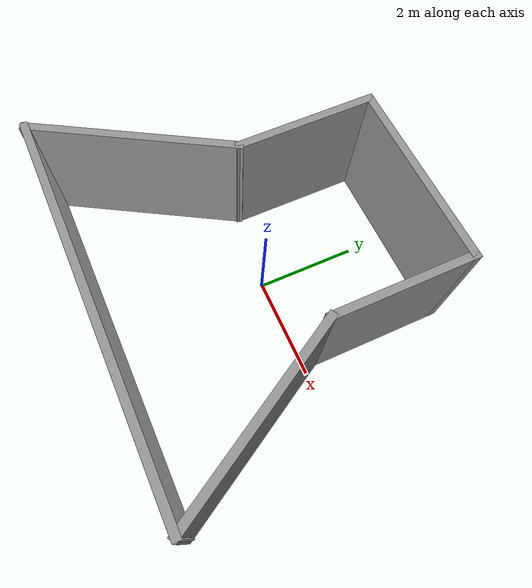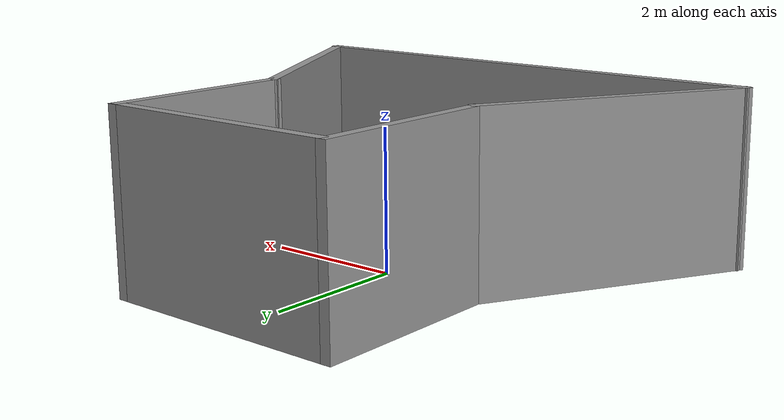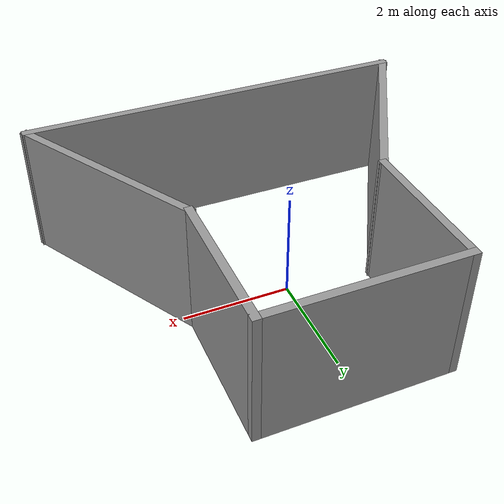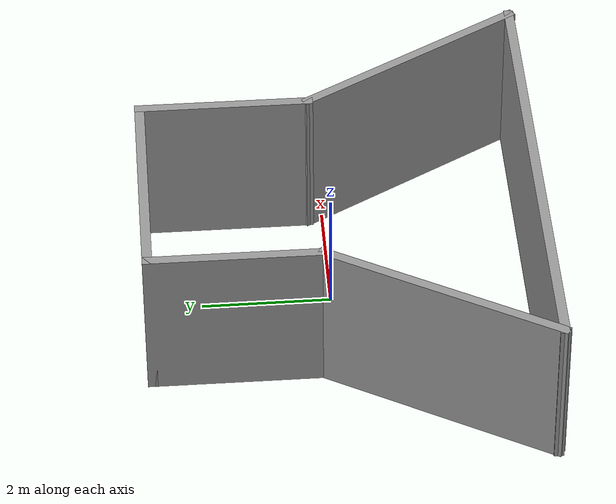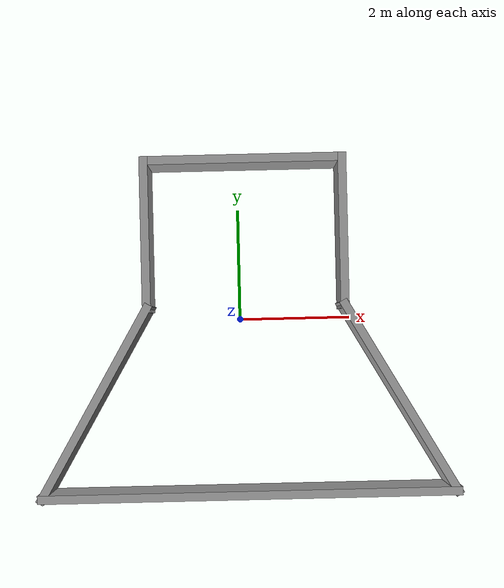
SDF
<?xml version='1.0'?>
<sdf version='1.7'>
  <model name='funnel_shaped_room'>
    <pose>0.105017 -0.160023 0 0 -0 0</pose>
    <link name='Wall_1'>
      <collision name='Wall_1_Collision'>
        <geometry>
          <box>
            <size>7.5 0.15 2.5</size>
          </box>
        </geometry>
        <pose>0 0 1.25 0 -0 0</pose>
      </collision>
      <visual name='Wall_1_Visual'>
        <pose>0 0 1.25 0 -0 0</pose>
        <geometry>
          <box>
            <size>7.5 0.15 2.5</size>
          </box>
        </geometry>
        <material>
          <script>
            <uri>file://media/materials/scripts/gazebo.material</uri>
            <name>Gazebo/Grey</name>
          </script>
          <ambient>1 1 1 1</ambient>
        </material>
        <meta>
          <layer>0</layer>
        </meta>
      </visual>
      <pose>-0 -2.95337 0 0 -0 0</pose>
    </link>
    <link name='Wall_2'>
      <collision name='Wall_2_Collision'>
        <geometry>
          <box>
            <size>4 0.15 2.5</size>
          </box>
        </geometry>
        <pose>0 0 1.25 0 -0 0</pose>
      </collision>
      <visual name='Wall_2_Visual'>
        <pose>0 0 1.25 0 -0 0</pose>
        <geometry>
          <box>
            <size>4 0.15 2.5</size>
          </box>
        </geometry>
        <material>
          <script>
            <uri>file://media/materials/scripts/gazebo.material</uri>
            <name>Gazebo/Grey</name>
          </script>
          <ambient>1 1 1 1</ambient>
        </material>
        <meta>
          <layer>0</layer>
        </meta>
      </visual>
      <pose>2.7125 -1.28627 0 0 -0 2.0944</pose>
    </link>
    <link name='Wall_3'>
      <collision name='Wall_3_Collision'>
        <geometry>
          <box>
            <size>2.75 0.15 2.5</size>
          </box>
        </geometry>
        <pose>0 0 1.25 0 -0 0</pose>
      </collision>
      <visual name='Wall_3_Visual'>
        <pose>0 0 1.25 0 -0 0</pose>
        <geometry>
          <box>
            <size>2.75 0.15 2.5</size>
          </box>
        </geometry>
        <material>
          <script>
            <uri>file://media/materials/scripts/gazebo.material</uri>
            <name>Gazebo/Grey</name>
          </script>
          <ambient>1 1 1 1</ambient>
        </material>
        <meta>
          <layer>0</layer>
        </meta>
      </visual>
      <pose>1.75 1.68083 0 0 -0 1.5708</pose>
    </link>
    <link name='Wall_5'>
      <collision name='Wall_5_Collision'>
        <geometry>
          <box>
            <size>4 0.15 2.5</size>
          </box>
        </geometry>
        <pose>0 0 1.25 0 -0 0</pose>
      </collision>
      <visual name='Wall_5_Visual'>
        <pose>0 0 1.25 0 -0 0</pose>
        <geometry>
          <box>
            <size>4 0.15 2.5</size>
          </box>
        </geometry>
        <material>
          <script>
            <uri>file://media/materials/scripts/gazebo.material</uri>
            <name>Gazebo/Grey</name>
          </script>
          <ambient>1 1 1 1</ambient>
        </material>
        <meta>
          <layer>0</layer>
        </meta>
      </visual>
      <pose>-2.7125 -1.28627 0 0 -0 1.0472</pose>
    </link>
    <link name='Wall_6'>
      <collision name='Wall_6_Collision'>
        <geometry>
          <box>
            <size>2.75 0.15 2.5</size>
          </box>
        </geometry>
        <pose>0 0 1.25 0 -0 0</pose>
      </collision>
      <visual name='Wall_6_Visual'>
        <pose>0 0 1.25 0 -0 0</pose>
        <geometry>
          <box>
            <size>2.75 0.15 2.5</size>
          </box>
        </geometry>
        <material>
          <script>
            <uri>file://media/materials/scripts/gazebo.material</uri>
            <name>Gazebo/Grey</name>
          </script>
          <ambient>1 1 1 1</ambient>
        </material>
        <meta>
          <layer>0</layer>
        </meta>
      </visual>
      <pose>-1.75 1.68083 0 0 -0 1.5708</pose>
    </link>
    <link name='Wall_7'>
      <collision name='Wall_7_Collision'>
        <geometry>
          <box>
            <size>3.65 0.15 2.5</size>
          </box>
        </geometry>
        <pose>0 0 1.25 0 -0 0</pose>
      </collision>
      <visual name='Wall_7_Visual'>
        <pose>0 0 1.25 0 -0 0</pose>
        <geometry>
          <box>
            <size>3.65 0.15 2.5</size>
          </box>
        </geometry>
        <material>
          <script>
            <uri>file://media/materials/scripts/gazebo.material</uri>
            <name>Gazebo/Grey</name>
          </script>
          <ambient>1 1 1 1</ambient>
        </material>
        <meta>
          <layer>0</layer>
        </meta>
      </visual>
      <pose>-0 2.98082 0 0 -0 0</pose>
    </link>
    <static>1</static>
  </model>
</sdf>
